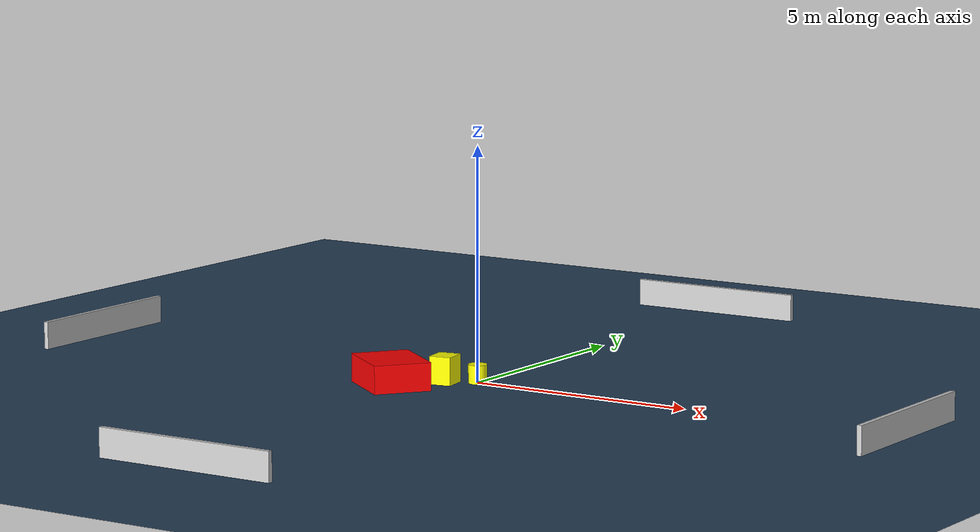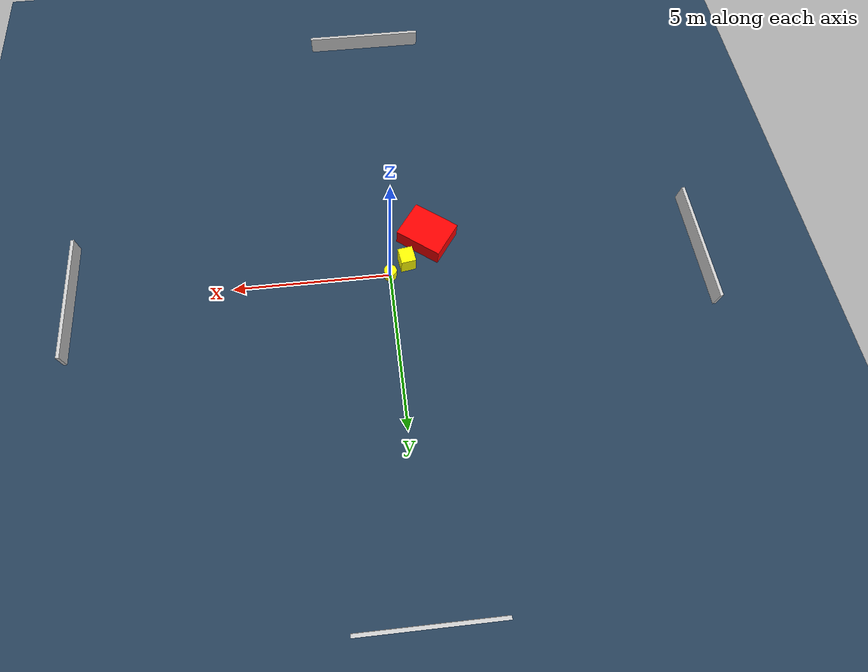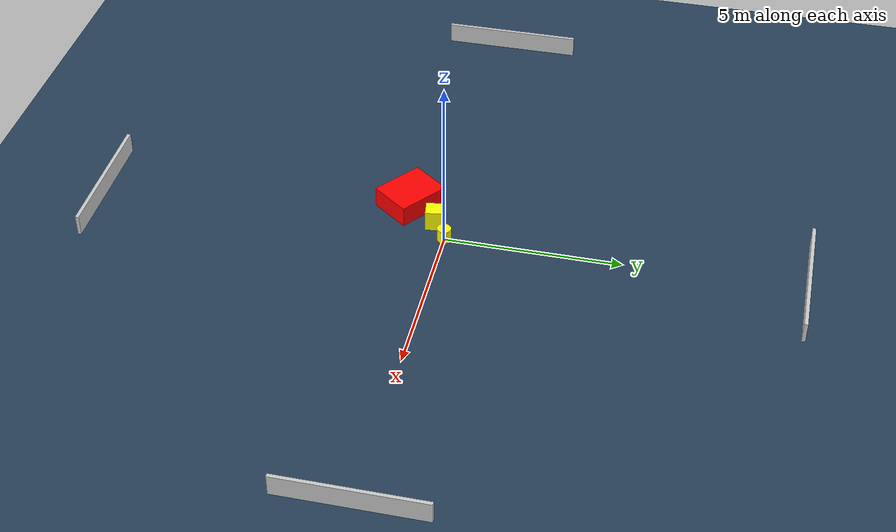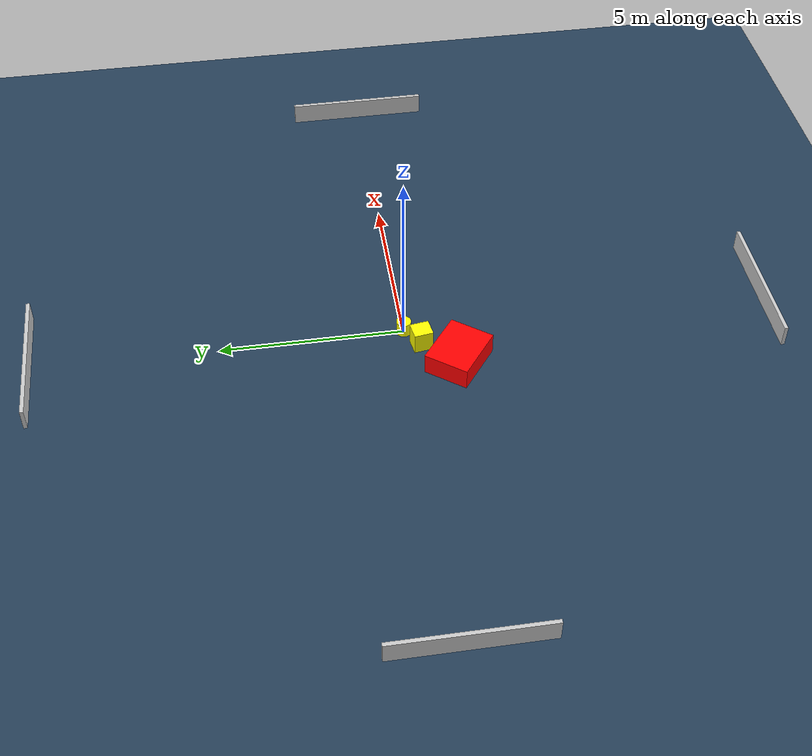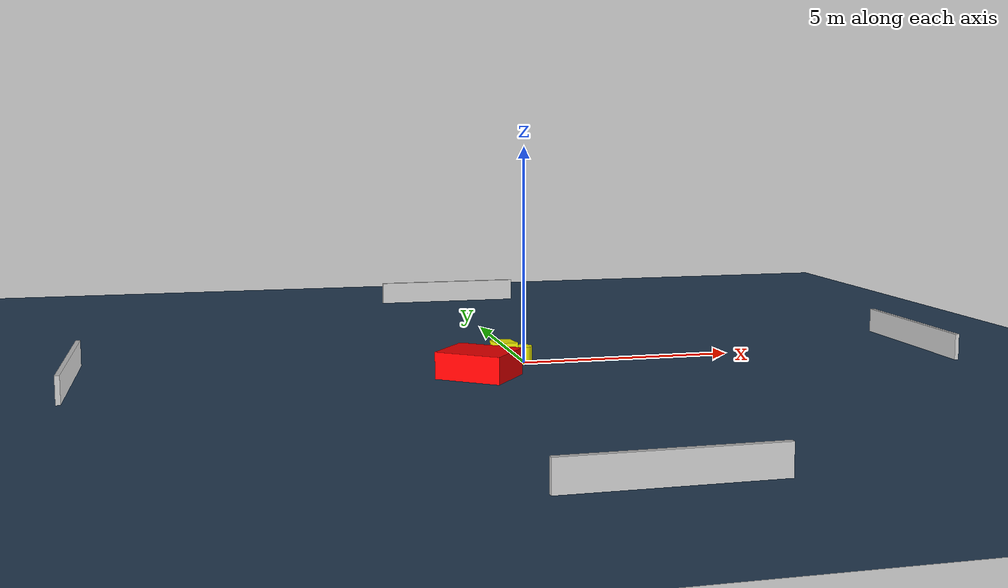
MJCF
<?xml version="1.0" ?>
<mujoco model="generated_environment">
  <option timestep="0.01" integrator="RK4" cone="elliptic"/>
  <default>
    <geom density="1"/>
  </default>
  <asset>
    <texture builtin="gradient" height="3072" name="skybox" rgb1="0.3 0.5 0.7" rgb2="0 0 0" type="skybox" width="512"/>
    <texture builtin="checker" height="300" name="groundplane" rgb1="0.2 0.3 0.4" rgb2="0.1 0.2 0.3" type="2d" width="300"/>
    <material name="groundplane" reflectance="0.2" texrepeat="5 5" texture="groundplane"/>
  </asset>
  <worldbody>
    <light dir="0 0 -1" directional="true" pos="0 0 1.5"/>
    <geom condim="3" friction="0.5 0.005 0.001" material="groundplane" name="floor" pos="0 0 0" size="0 0 0.05" type="plane"/>
    <body name="walls">
      <geom name="wall_1" condim="4" pos="-10.0 0.0 0.3" rgba="0.800000011920929 0.800000011920929 0.800000011920929 1.0" size="0.05 2.0 0.3" type="box"/>
      <geom name="wall_2" condim="4" pos="10.0 0.0 0.3" rgba="0.800000011920929 0.800000011920929 0.800000011920929 1.0" size="0.05 2.0 0.3" type="box"/>
      <geom name="wall_3" condim="4" pos="0.0 -10.0 0.3" rgba="0.800000011920929 0.800000011920929 0.800000011920929 1.0" size="2.0 0.05 0.3" type="box"/>
      <geom name="wall_4" condim="4" pos="0.0 10.0 0.3" rgba="0.800000011920929 0.800000011920929 0.800000011920929 1.0" size="2.0 0.05 0.3" type="box"/>
    </body>
    <body name="robot">
      <joint name="joint_x" type="slide" pos="0 0 0" axis="1 0 0"/>
      <joint name="joint_y" type="slide" pos="0 0 0" axis="0 1 0"/>
      <geom name="robot" type="cylinder" pos="0.0 0.0 0.2" size="0.2 0.2 0.0" mass="5.0" friction="1.0 0.005 0.0001" condim="4" rgba="1.0 1.0 0.0 1.0"/>
    </body>
    <body name="obstacle_1_movable">
      <geom name="obstacle_1_movable" condim="4" pos="-0.5624540801243046 -0.39109565788259565 0.3" euler="0 0 278.62694445032196" friction="0.0 0.005 0.001" rgba="1.0 1.0 0.0 1.0" size="0.25961679403941906 0.23643274522048793 0.3" type="box" mass="0.1"/>
      <joint type="free"/>
    </body>
    <body name="obstacle_2_static">
      <geom name="obstacle_2_static" condim="4" pos="-1.3182726565014156 -1.2729938137572956 0.3" euler="0 0 232.81957042892765" friction="0.0 0.005 0.001" rgba="1.0 0.0 0.0 1.0" size="0.6196062187349625 0.7699472361086976 0.3" type="box"/>
    </body>
  </worldbody>
  <actuator>
    <motor name="actuator_x" joint="joint_x" gear="1" ctrlrange="-1 1"/>
    <motor name="actuator_y" joint="joint_y" gear="1" ctrlrange="-1 1"/>
  </actuator>
</mujoco>
